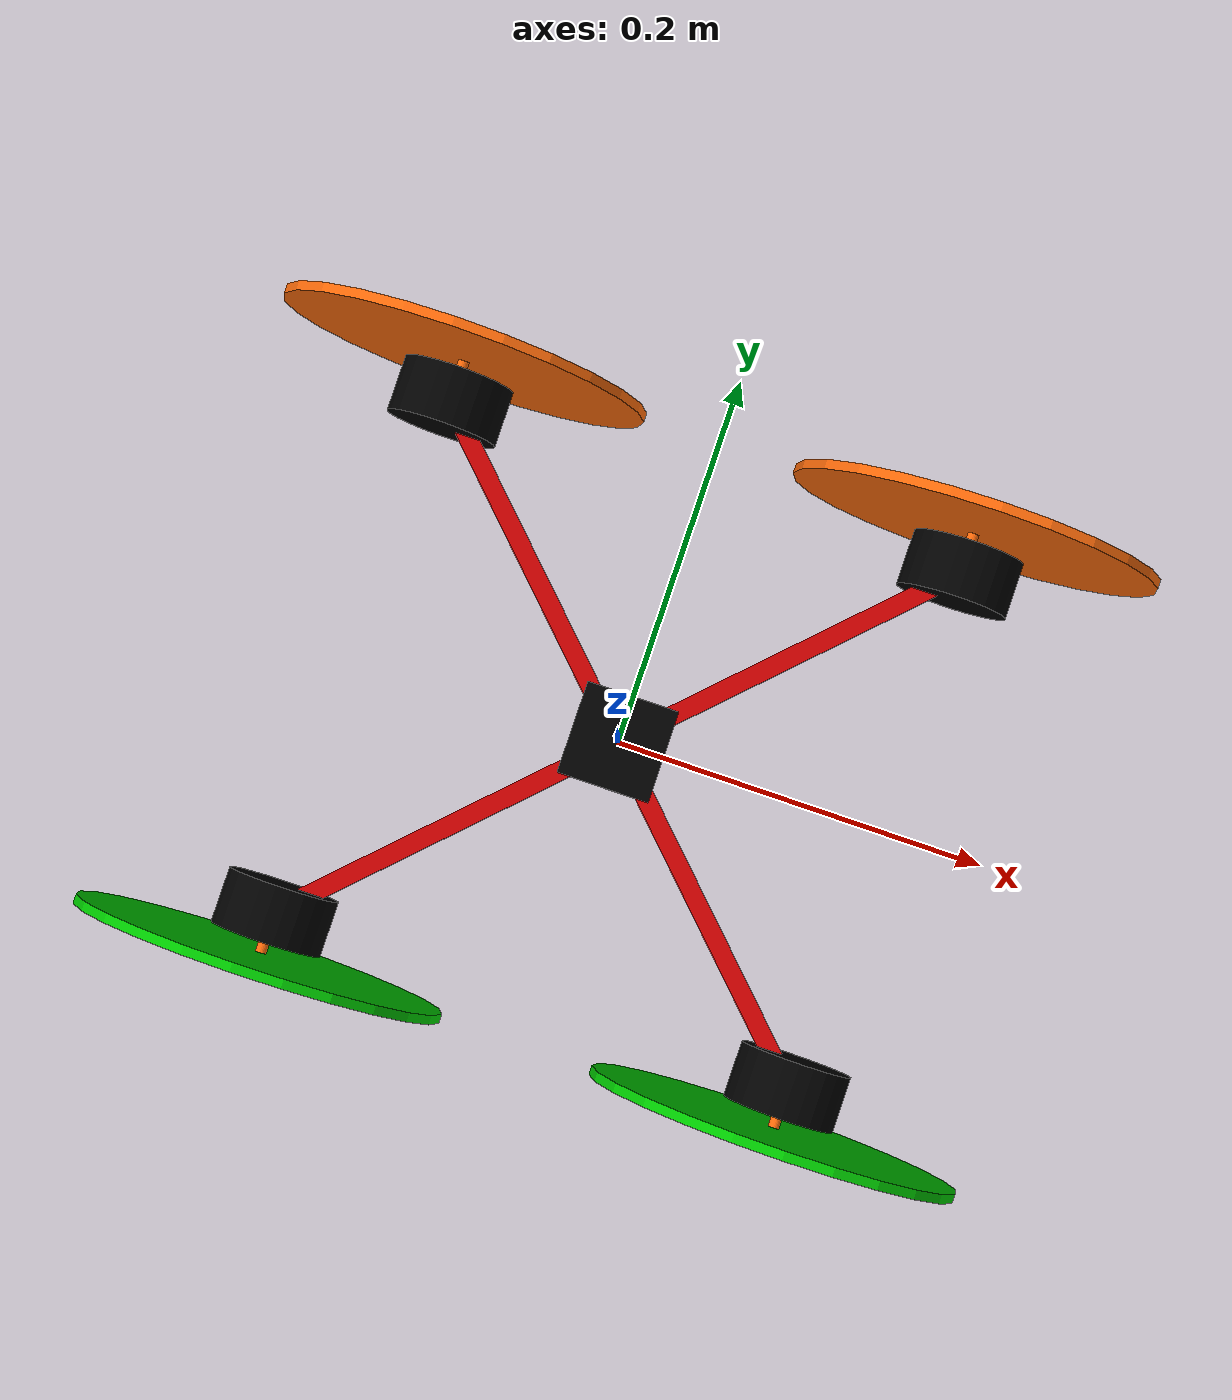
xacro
<?xml version="1.0"?>
<!-- Revolute-Revolute Manipulator -->
<robot name="car" xmlns:xacro="http://www.ros.org/wiki/xacro">

    <!-- Constants for robot dimensions -->
    <xacro:property name="namespace" value="/car"/>
    <xacro:property name="PI" value="3.1415926535897931"/>

    <!-- ros_control plugin -->
    <gazebo>
        <plugin name="gazebo_ros_control" filename="libgazebo_ros_control.so">
            <robotNamespace>${namespace}</robotNamespace>
            <robotSimType>gazebo_ros_control/DefaultRobotHWSim</robotSimType>
        </plugin>
        <plugin name="car_groundtruth" filename="libgazebo_ros_p3d.so">
            <robotNamespace>${namespace}</robotNamespace>
            <frameName>world</frameName>
            <alwaysOn>true</alwaysOn>
            <bodyName>FC</bodyName>
            <topicName>position_groundtruth</topicName>
            <gaussianNoise>0.00</gaussianNoise>
            <updateRate>100.0</updateRate>
        </plugin>

    </gazebo>

    <xacro:macro name="gazebo_mat_color" params="color">
        <material>Gazebo/${color}</material>
    </xacro:macro>
    <material name="Black">
        <color rgba="0.0 0.0 0.0 1.0"/>
    </material>
    <material name="Blue">
        <color rgba="0.0 0.0 0.8 1.0"/>
    </material>
    <material name="Green">
        <color rgba="0.0 0.8 0.0 1.0"/>
    </material>
    <material name="Grey">
        <color rgba="0.2 0.2 0.2 1.0"/>
    </material>
    <material name="Orange">
        <color rgba="${255/255} ${108/255} ${10/255} 1.0"/>
    </material>
    <material name="Brown">
        <color rgba="${222/255} ${207/255} ${195/255} 1.0"/>
    </material>
    <material name="Red">
        <color rgba="0.8 0.0 0.0 1.0"/>
    </material>
    <material name="White">
        <color rgba="1.0 1.0 1.0 1.0"/>
    </material>

    <!-- A primitive for a box -->
    <xacro:macro name="box_base_link" params="name m x y z mat **gaz_extra">
        <link name="${name}">
            <collision>
                <origin xyz="0 0 0" rpy="0 0 0"/>
                <geometry>
                    <box size="${x} ${y} ${z}"/>
                </geometry>
            </collision>
            <visual>
                <origin xyz="0 0 0" rpy="0 0 0"/>
                <geometry>
                    <box size="${x} ${y} ${z}"/>
                </geometry>
                <material name="${mat}"/>
            </visual>
            <inertial>
                <origin xyz="0 0 0" rpy="0 0 0"/>
                <mass value="${m}"/>
                <inertia
                    ixx="${(m / 12.0) * (y*y + z*z)}" ixy="0.0" ixz="0.0"
                    iyy="${(m / 12.0) * (x*x + z*z)}" iyz="0.0"
                    izz="${(m / 12.0) * (x*x + y*y)}" />
            </inertial>
        </link>
        <gazebo reference="${name}">
            <xacro:gazebo_mat_color color="${mat}" />
            <mu1>0.2</mu1>
            <mu2>0.2</mu2>
        </gazebo>
        <xacro:insert_block name="gaz_extra" />
    </xacro:macro>

    <!-- A primitive for a cylinder -->
    <xacro:macro name="cylinder_base_link" params="name m l r mat">
        <link name="${name}">
            <collision>
                <origin xyz="0 0 0" rpy="0 0 0"/>
                <geometry>
                    <cylinder length="${l}" radius="${r}" />
                </geometry>
            </collision>
            <visual>
                <origin xyz="0 0 0" rpy="0 0 0"/>
                <geometry>
                    <cylinder length="${l}" radius="${r}" />
                </geometry>
                <material name="${mat}"/>
            </visual>
            <inertial>
                <origin xyz="0 0 0" rpy="0 0 0"/>
                <mass value="${m}"/>
                <inertia
                    ixx="${(m / 12.0) * (3*r*r + l*l)}" ixy="0.0" ixz="0.0"
                    iyy="${(m / 12.0) * (3*r*r + l*l)}" iyz="0.0"
                    izz="${(m / 2) * (r*r)}" />
            </inertial>
        </link>
        <gazebo reference="${name}">
            <xacro:gazebo_mat_color color="${mat}" />
            <mu1>0.2</mu1>
            <mu2>0.2</mu2>
        </gazebo>
        <!--xacro:insert_block name="gaz_extra" /-->
    </xacro:macro>

    <!-- Right and left turning motors including propellers - templates -->
    <xacro:macro name="motor_with_wheel_left" params="name">
        <xacro:cylinder_base_link name="${name}_link" m="0.05" r="0.03" l="0.03" mat="Black" />
        <joint name="${name}" type="continuous">
            <limit effort="100" velocity="1000" />
            <dynamics damping="0.0001" friction="0.01" />
            <parent link="${name}_link"/>
            <origin xyz="0 0 0.025" rpy="0 0 0"/>
            <axis xyz="0 0 1" />
            <child link="${name}_axle"/>
        </joint>
        <transmission name="${name}_trans">
            <type>transmission_interface/SimpleTransmission</type>
            <joint name="${name}">
                <hardwareInterface>hardware_interface/EffortJointInterface</hardwareInterface>
            </joint>
            <actuator name="${name}">
                <hardwareInterface>hardware_interface/EffortJointInterface</hardwareInterface>
                <mechanicalReduction>1</mechanicalReduction>
            </actuator>
            </transmission>
        <xacro:cylinder_base_link name="${name}_axle" m="0.05" r="0.003" l="0.019" mat="Orange" />
        <joint name="${name}_blade1_joint" type="revolute">
            <!-- this must be a revolute joint due to a simulator bug. it does not actually move -->
            <limit effort="1000" velocity="0" lower="0" upper="0" />
            <parent link="${name}_axle" />
            <origin xyz="0 0 0" rpy="0 0 0" />
            <axis xyz="0 0 1" />
            <child link="${name}_wheel"/>
        </joint>
        <xacro:cylinder_base_link name="${name}_wheel" m="0.1" r="0.1" l="0.005" mat="Orange" />
    </xacro:macro>
    <xacro:macro name="motor_with_wheel_right" params="name">
        <xacro:cylinder_base_link name="${name}_link" m="0.05" r="0.03" l="0.03" mat="Black" />
        <joint name="${name}" type="continuous">
            <limit effort="100" velocity="1000" />
            <dynamics damping="0.0001" friction="0.01" />
            <parent link="${name}_link"/>
            <origin xyz="0 0 0.025" rpy="${PI} 0 0"/><!-- note: rotated 180 deg to force reverse rotation -->
            <axis xyz="0 0 1" />
            <child link="${name}_axle"/>
        </joint>
        <transmission name="${name}_trans">
            <type>transmission_interface/SimpleTransmission</type>
            <joint name="${name}">
                <hardwareInterface>hardware_interface/EffortJointInterface</hardwareInterface>
            </joint>
            <actuator name="${name}">
                <hardwareInterface>hardware_interface/EffortJointInterface</hardwareInterface>
                <mechanicalReduction>1</mechanicalReduction>
            </actuator>
            </transmission>
        <xacro:cylinder_base_link name="${name}_axle" m="0.05" r="0.003" l="0.019" mat="Orange" />
        <joint name="${name}_blade1_joint" type="revolute">
            <!-- this must be a revolute joint due to a simulator bug. it does not actually move -->
            <limit effort="1000" velocity="0" lower="0" upper="0" />
            <parent link="${name}_axle" />
            <origin xyz="0 0 0" rpy="0 0 0" />
            <axis xyz="0 0 1" />
            <child link="${name}_wheel"/>
        </joint>
        <xacro:cylinder_base_link name="${name}_wheel" m="0.1" r="0.1" l="0.005" mat="Green" />
    </xacro:macro>

    <!-- dummy root link used for a vehicle that is not glued to the world map-->
    <link name="dummyroot" />

    <!-- actual vehicle definition is here, using macros -->
    <!-- flight controller - base for the sensors -->
    <!-- 2 red bars 90 degrees to each other -->
    <xacro:box_base_link name="FC" m="0.002" x="0.05" y="0.05" z="0.005" mat="Black">
        <nothing/>
    </xacro:box_base_link>
    <joint name="FC_joint" type="fixed">
        <parent link="dummyroot"/>
        <origin xyz="0 0 0.01" rpy="0 0 0"/>
        <child link="FC"/>
    </joint>

    <!-- 2 red bars 90 degrees to each other -->
    <joint name="dummyrootjoint" type="fixed">
        <parent link="dummyroot"/>
        <origin xyz="0 0 0" rpy="0 0 ${-PI/4}"/>
        <child link="bar0"/>
    </joint>
    <xacro:box_base_link name="bar0" m="0.1" x="0.4" y="0.01" z="0.01" mat="Red">
        <nothing/>
    </xacro:box_base_link>
    <joint name="bar_joint" type="fixed">
        <parent link="dummyroot"/>
        <origin xyz="0 0 0" rpy="0 0 ${PI/4}"/>
        <child link="bar1"/>
    </joint>
    <xacro:box_base_link name="bar1" m="0.1" x="0.4" y="0.01" z="0.01" mat="Red">
        <nothing/>
    </xacro:box_base_link>

    <!-- one motor of each type as example - please also check file:
        < rrbot_control/config/rrbot_control.yaml >
        where the motors are referenced for virtual engine controllers -->
    <joint name="bar_motor0_joint" type="fixed">
        <parent link="bar1"/>
        <origin xyz="0.2 0 0" rpy="0 ${PI/2} ${PI/4}"/>
        <child link="motor0_link"/>
    </joint>
    <xacro:motor_with_wheel_left name="motor0" />
    <joint name="bar_motor2_joint" type="fixed">
        <parent link="bar1"/>
        <origin xyz="-0.2 0 0" rpy="0 ${-PI/2} ${PI/4}"/>
        <child link="motor2_link"/>
    </joint>
    <xacro:motor_with_wheel_right name="motor2" />
    <joint name="bar_motor1_joint" type="fixed">
        <parent link="bar0"/>
        <origin xyz="0.2 0 0" rpy="0 ${PI/2} ${-PI/4}"/>
        <child link="motor1_link"/>
    </joint>
    <xacro:motor_with_wheel_right name="motor1" />
    <joint name="bar_motor3_joint" type="fixed">
        <parent link="bar0"/>
        <origin xyz="-0.2 0 0" rpy="0 ${-PI/2} ${-PI/4}"/>
        <child link="motor3_link"/>
    </joint>
    <xacro:motor_with_wheel_left name="motor3" />
</robot>
